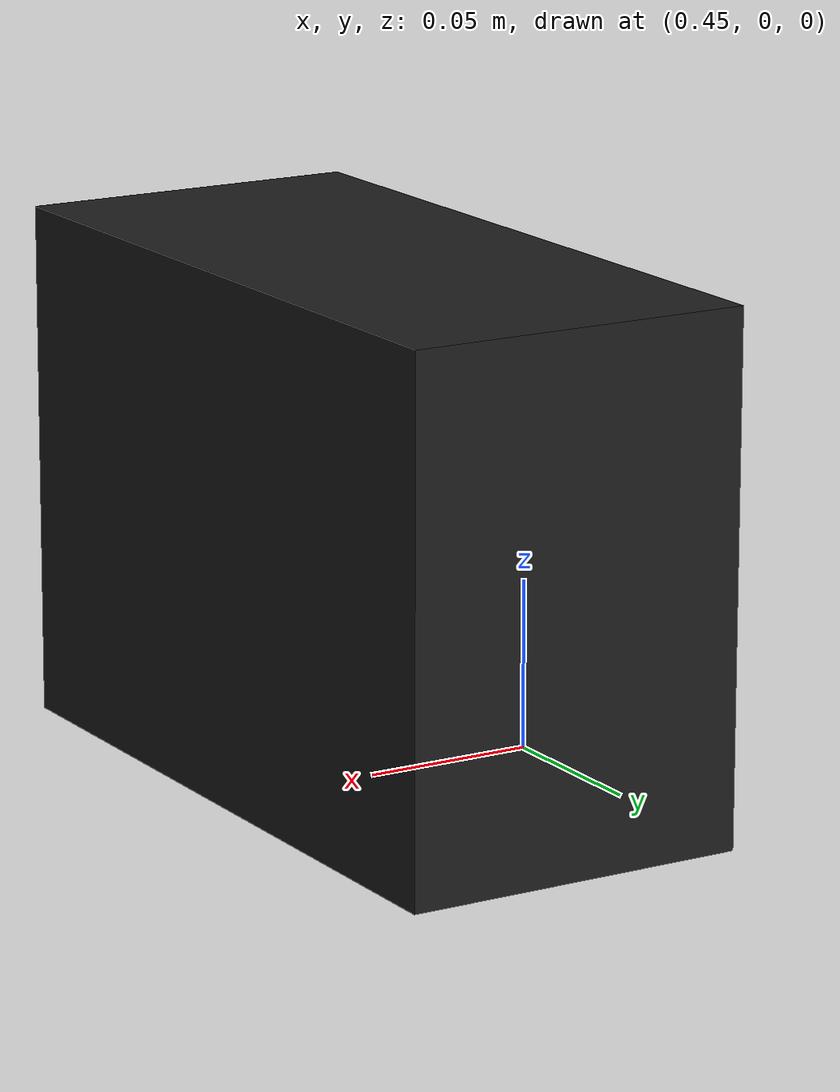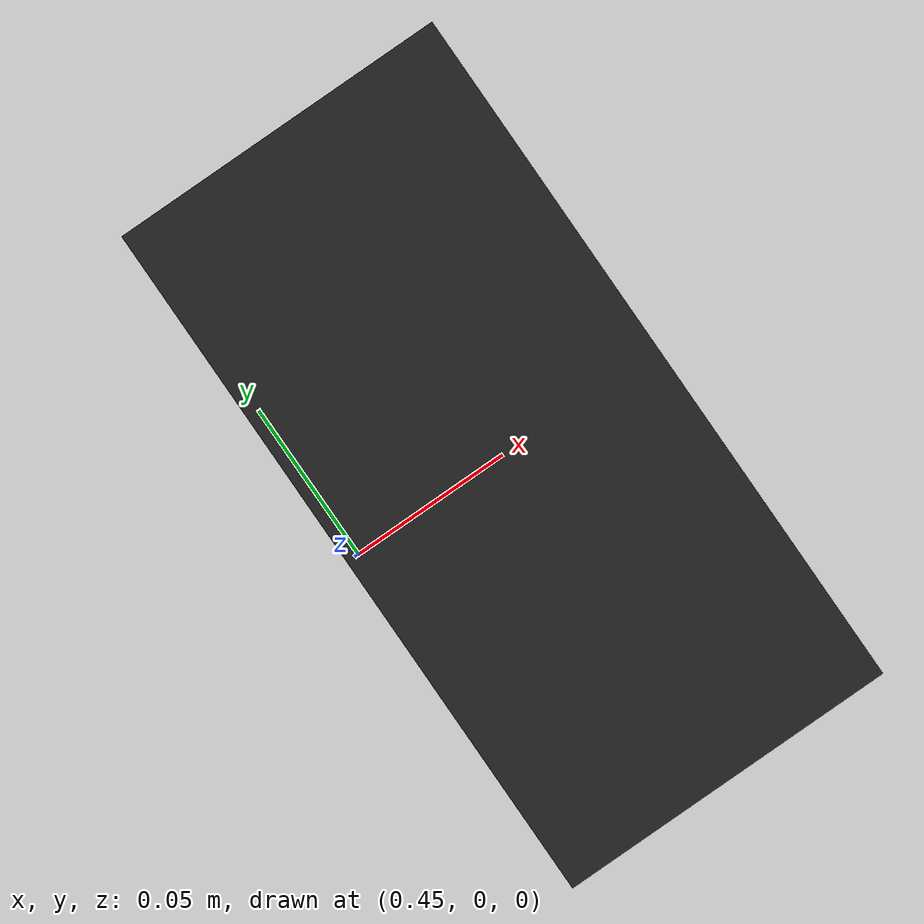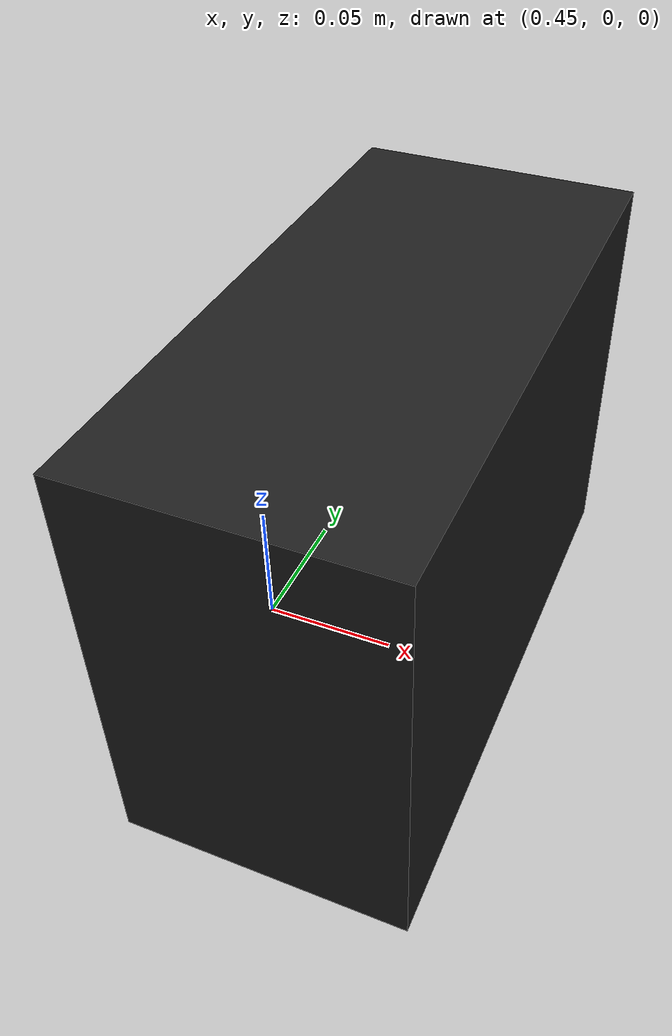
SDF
<?xml version='1.0'?>
<sdf version='1.6'>
  <model name="boxBack">
    <link name="boxBack">
      <pose>0.5 0 0.075 0 0 0</pose>
      <inertial>
        <mass>10000</mass>
      </inertial>
      <collision name="box_collision">
        <geometry>
          <box>
              <size>.1 .21 .15</size>
            </box>
        </geometry>
			<surface>
                <friction>
                  <ode>
                    <mu>1000</mu>
                    <mu2>1000</mu2>
                  </ode>
                </friction>
              </surface>
      </collision>
      <visual name="box_visual">
        <geometry>
          <box>
              <size>.1 .21 .15</size>
            </box>
        </geometry>
		<material>
		    <script>
		      <uri>file://media/materials/scripts/gazebo.material</uri>
		      <name>Gazebo/Black</name>
		    </script>
      	</material>
      </visual>
    </link>
  </model>
</sdf>
